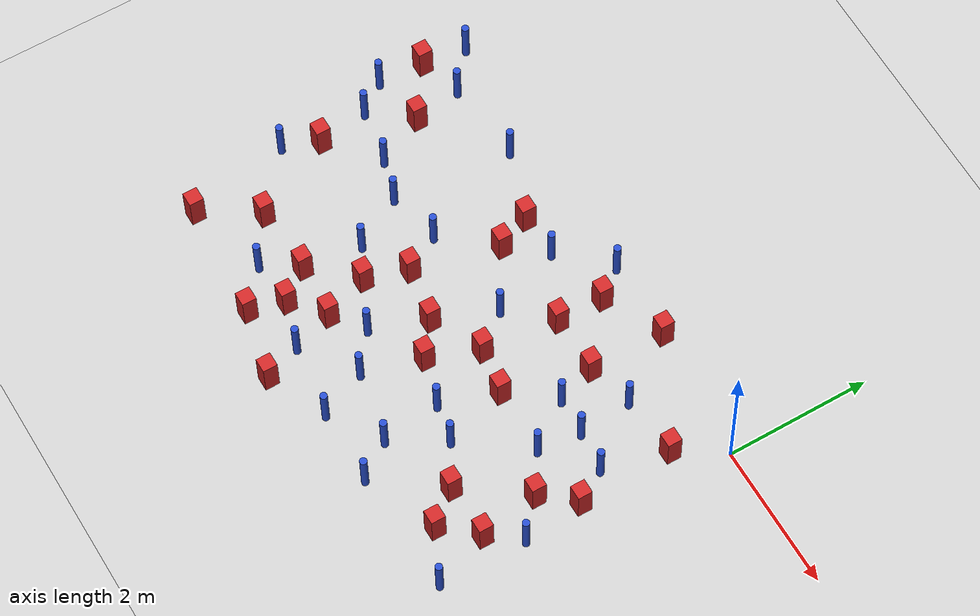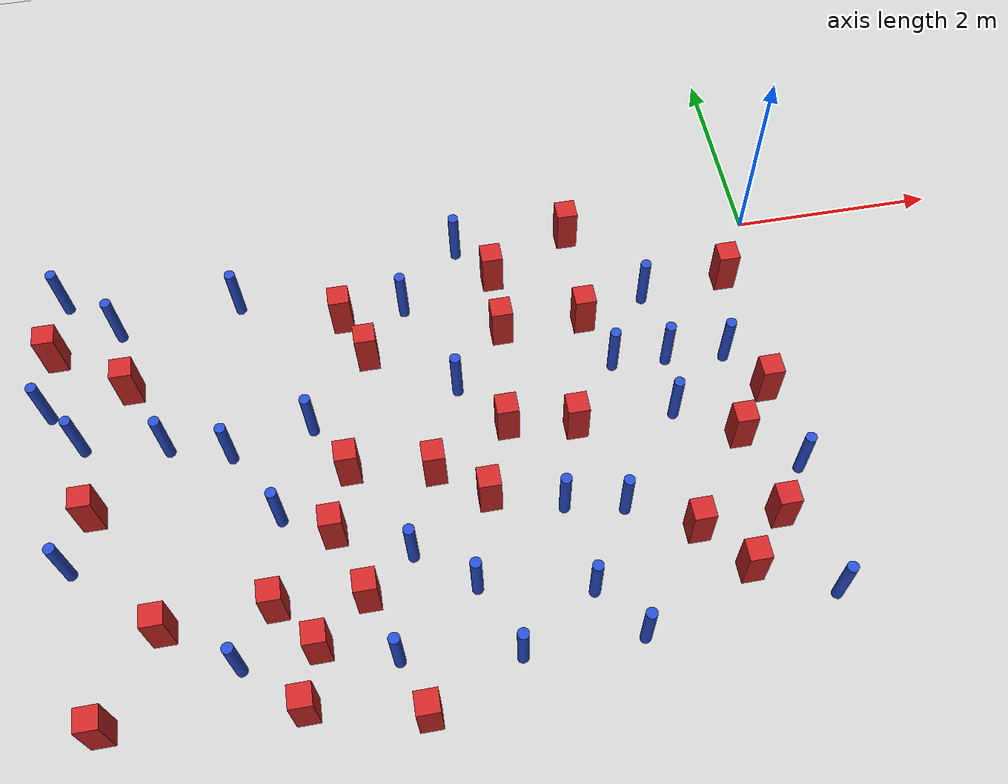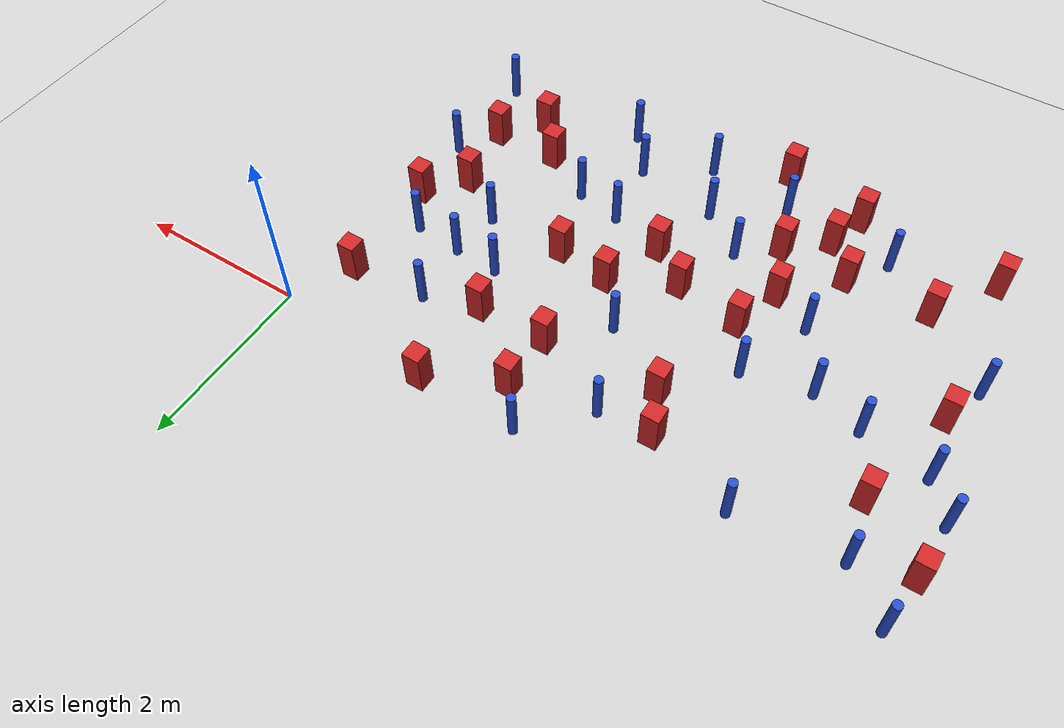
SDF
<sdf version="1.6">
 <world name="default">
  <model name="ground_plane">
   <static>1</static>
   <link name="link">
    <collision name="collision">
     <geometry><plane><normal>0 0 1</normal><size>100 100</size></plane></geometry>
     <surface><friction><ode><mu>100</mu><mu2>50</mu2></ode></friction></surface>
    </collision>
    <visual name="visual">
     <cast_shadows>0</cast_shadows>
     <geometry><plane><normal>0 0 1</normal><size>100 100</size></plane></geometry>
     <material>
      <ambient>1.0 1.0 1.0 1.0</ambient>
      <diffuse>0.8 0.8 0.8 1.0</diffuse>
      <specular>0.01 0.01 0.01 1.000000</specular>
     </material>
    </visual>
   </link>
  </model>
  <model name="NamedLocations">
   <static>true</static>
   <link name="DefaultStart"><pose>8.5 0 0 0 0 3.14</pose></link>
  </model>
  <model name="square_post_obstacle1">
   <static>true</static>
   <pose>-6.2170772033 -0.961407321698 -6.11067671241e-07 -5.50515727128e-06 -8.79689657224e-07 2.37013304536e-05</pose>
   <link name="link">
    <pose>0 0 0.25 0 -0 0</pose>
    <inertial>
     <mass>100</mass>
     <inertia>
      <ixx>0.166667</ixx>
      <ixy>0</ixy>
      <ixz>0</ixz>
      <iyy>0.166667</iyy>
      <iyz>0</iyz>
      <izz>0.166667</izz>
     </inertia>
    </inertial>
    <collision name="collision"><geometry><box><size>.2 .2 .5</size></box></geometry></collision>
    <visual name="visual">
     <geometry><box><size>.2 .2 .5</size></box></geometry>
     <material>
      <script><name>Gazebo/Red</name><uri>file://media/materials/scripts/gazebo.material</uri></script>
     </material>
    </visual>
   </link>
  </model>
  <model name="pole_obstacle1">
   <static>true</static>
   <pose>-0.284534505125 -4.02953136644 -9.47619616065e-06 5.49618799737e-07 2.36310414071e-07 -1.55090534793e-07</pose>
   <link name="link">
    <pose>0 0 0.3 0 -0 0</pose>
    <inertial>
     <mass>1</mass>
     <inertia><ixx>0.145833</ixx><ixy>0</ixy><ixz>0</ixz><iyy>0.145833</iyy><iyz>0</iyz><izz>0.125</izz></inertia>
    </inertial>
    <collision name="collision">
     <geometry><cylinder><radius>0.05</radius><length>.6</length></cylinder></geometry>
    </collision>
    <visual name="visual">
     <geometry><cylinder><radius>0.05</radius><length>.6</length></cylinder></geometry>
     <material>
      <script><name>Gazebo/Blue</name><uri>file://media/materials/scripts/gazebo.material</uri></script>
     </material>
    </visual>
   </link>
  </model>
  <model name="square_post_obstacle5">
   <static>true</static>
   <pose>-3.98409590018 -0.982114767462 -6.11067671241e-07 -5.50515727128e-06 -8.79689657224e-07 2.37013304536e-05</pose>
   <link name="link">
    <pose>0 0 0.25 0 -0 0</pose>
    <inertial>
     <mass>100</mass>
     <inertia>
      <ixx>0.166667</ixx>
      <ixy>0</ixy>
      <ixz>0</ixz>
      <iyy>0.166667</iyy>
      <iyz>0</iyz>
      <izz>0.166667</izz>
     </inertia>
    </inertial>
    <collision name="collision"><geometry><box><size>.2 .2 .5</size></box></geometry></collision>
    <visual name="visual">
     <geometry><box><size>.2 .2 .5</size></box></geometry>
     <material>
      <script><name>Gazebo/Red</name><uri>file://media/materials/scripts/gazebo.material</uri></script>
     </material>
    </visual>
   </link>
  </model>
  <model name="pole_obstacle20">
   <static>true</static>
   <pose>-1.17153905692 -1.47997683665 -9.47619616065e-06 5.49618799737e-07 2.36310414065e-07 -1.55090534798e-07</pose>
   <link name="link">
    <pose>0 0 0.3 0 -0 0</pose>
    <inertial>
     <mass>1</mass>
     <inertia><ixx>0.145833</ixx><ixy>0</ixy><ixz>0</ixz><iyy>0.145833</iyy><iyz>0</iyz><izz>0.125</izz></inertia>
    </inertial>
    <collision name="collision">
     <geometry><cylinder><radius>0.05</radius><length>.6</length></cylinder></geometry>
    </collision>
    <visual name="visual">
     <geometry><cylinder><radius>0.05</radius><length>.6</length></cylinder></geometry>
     <material>
      <script><name>Gazebo/Blue</name><uri>file://media/materials/scripts/gazebo.material</uri></script>
     </material>
    </visual>
   </link>
  </model>
  <model name="pole_obstacle22">
   <static>true</static>
   <pose>-4.56984238701 -1.65780048948 -9.47619616065e-06 5.49618799738e-07 2.36310414071e-07 -1.55090534796e-07</pose>
   <link name="link">
    <pose>0 0 0.3 0 -0 0</pose>
    <inertial>
     <mass>1</mass>
     <inertia><ixx>0.145833</ixx><ixy>0</ixy><ixz>0</ixz><iyy>0.145833</iyy><iyz>0</iyz><izz>0.125</izz></inertia>
    </inertial>
    <collision name="collision">
     <geometry><cylinder><radius>0.05</radius><length>.6</length></cylinder></geometry>
    </collision>
    <visual name="visual">
     <geometry><cylinder><radius>0.05</radius><length>.6</length></cylinder></geometry>
     <material>
      <script><name>Gazebo/Blue</name><uri>file://media/materials/scripts/gazebo.material</uri></script>
     </material>
    </visual>
   </link>
  </model>
  <model name="pole_obstacle24">
   <static>true</static>
   <pose>-5.32179568418 -1.81775550254 -9.47619616065e-06 5.49618799738e-07 2.36310414071e-07 -1.55090534796e-07</pose>
   <link name="link">
    <pose>0 0 0.3 0 -0 0</pose>
    <inertial>
     <mass>1</mass>
     <inertia><ixx>0.145833</ixx><ixy>0</ixy><ixz>0</ixz><iyy>0.145833</iyy><iyz>0</iyz><izz>0.125</izz></inertia>
    </inertial>
    <collision name="collision">
     <geometry><cylinder><radius>0.05</radius><length>.6</length></cylinder></geometry>
    </collision>
    <visual name="visual">
     <geometry><cylinder><radius>0.05</radius><length>.6</length></cylinder></geometry>
     <material>
      <script><name>Gazebo/Blue</name><uri>file://media/materials/scripts/gazebo.material</uri></script>
     </material>
    </visual>
   </link>
  </model>
  <model name="square_post_obstacle35">
   <static>true</static>
   <pose>-4.23480467688 -3.38768069975 -6.11067671241e-07 -5.50515727128e-06 -8.79689657224e-07 2.37013304536e-05</pose>
   <link name="link">
    <pose>0 0 0.25 0 -0 0</pose>
    <inertial>
     <mass>100</mass>
     <inertia>
      <ixx>0.166667</ixx>
      <ixy>0</ixy>
      <ixz>0</ixz>
      <iyy>0.166667</iyy>
      <iyz>0</iyz>
      <izz>0.166667</izz>
     </inertia>
    </inertial>
    <collision name="collision"><geometry><box><size>.2 .2 .5</size></box></geometry></collision>
    <visual name="visual">
     <geometry><box><size>.2 .2 .5</size></box></geometry>
     <material>
      <script><name>Gazebo/Red</name><uri>file://media/materials/scripts/gazebo.material</uri></script>
     </material>
    </visual>
   </link>
  </model>
  <model name="pole_obstacle34">
   <static>true</static>
   <pose>-5.16815903886 -0.163068680038 -9.47619616065e-06 5.49618799737e-07 2.36310414076e-07 -1.55090534792e-07</pose>
   <link name="link">
    <pose>0 0 0.3 0 -0 0</pose>
    <inertial>
     <mass>1</mass>
     <inertia><ixx>0.145833</ixx><ixy>0</ixy><ixz>0</ixz><iyy>0.145833</iyy><iyz>0</iyz><izz>0.125</izz></inertia>
    </inertial>
    <collision name="collision">
     <geometry><cylinder><radius>0.05</radius><length>.6</length></cylinder></geometry>
    </collision>
    <visual name="visual">
     <geometry><cylinder><radius>0.05</radius><length>.6</length></cylinder></geometry>
     <material>
      <script><name>Gazebo/Blue</name><uri>file://media/materials/scripts/gazebo.material</uri></script>
     </material>
    </visual>
   </link>
  </model>
  <model name="pole_obstacle35">
   <static>true</static>
   <pose>-1.90234170587 -2.94201416324 -9.47619616065e-06 5.49618799737e-07 2.36310414062e-07 -1.55090534798e-07</pose>
   <link name="link">
    <pose>0 0 0.3 0 -0 0</pose>
    <inertial>
     <mass>1</mass>
     <inertia><ixx>0.145833</ixx><ixy>0</ixy><ixz>0</ixz><iyy>0.145833</iyy><iyz>0</iyz><izz>0.125</izz></inertia>
    </inertial>
    <collision name="collision">
     <geometry><cylinder><radius>0.05</radius><length>.6</length></cylinder></geometry>
    </collision>
    <visual name="visual">
     <geometry><cylinder><radius>0.05</radius><length>.6</length></cylinder></geometry>
     <material>
      <script><name>Gazebo/Blue</name><uri>file://media/materials/scripts/gazebo.material</uri></script>
     </material>
    </visual>
   </link>
  </model>
  <model name="pole_obstacle37">
   <static>true</static>
   <pose>-2.9773305955 0.136437971208 -9.47619616065e-06 5.49618799737e-07 2.36310414074e-07 -1.55090534793e-07</pose>
   <link name="link">
    <pose>0 0 0.3 0 -0 0</pose>
    <inertial>
     <mass>1</mass>
     <inertia><ixx>0.145833</ixx><ixy>0</ixy><ixz>0</ixz><iyy>0.145833</iyy><iyz>0</iyz><izz>0.125</izz></inertia>
    </inertial>
    <collision name="collision">
     <geometry><cylinder><radius>0.05</radius><length>.6</length></cylinder></geometry>
    </collision>
    <visual name="visual">
     <geometry><cylinder><radius>0.05</radius><length>.6</length></cylinder></geometry>
     <material>
      <script><name>Gazebo/Blue</name><uri>file://media/materials/scripts/gazebo.material</uri></script>
     </material>
    </visual>
   </link>
  </model>
  <model name="pole_obstacle39">
   <static>true</static>
   <pose>-6.84615323671 0.140442825095 -9.47619616065e-06 5.49618799737e-07 2.36310414076e-07 -1.55090534793e-07</pose>
   <link name="link">
    <pose>0 0 0.3 0 -0 0</pose>
    <inertial>
     <mass>1</mass>
     <inertia><ixx>0.145833</ixx><ixy>0</ixy><ixz>0</ixz><iyy>0.145833</iyy><iyz>0</iyz><izz>0.125</izz></inertia>
    </inertial>
    <collision name="collision">
     <geometry><cylinder><radius>0.05</radius><length>.6</length></cylinder></geometry>
    </collision>
    <visual name="visual">
     <geometry><cylinder><radius>0.05</radius><length>.6</length></cylinder></geometry>
     <material>
      <script><name>Gazebo/Blue</name><uri>file://media/materials/scripts/gazebo.material</uri></script>
     </material>
    </visual>
   </link>
  </model>
  <model name="pole_obstacle40">
   <static>true</static>
   <pose>-3.57928712825 -0.479166919808 -9.47619616065e-06 5.49618799737e-07 2.36310414066e-07 -1.55090534798e-07</pose>
   <link name="link">
    <pose>0 0 0.3 0 -0 0</pose>
    <inertial>
     <mass>1</mass>
     <inertia><ixx>0.145833</ixx><ixy>0</ixy><ixz>0</ixz><iyy>0.145833</iyy><iyz>0</iyz><izz>0.125</izz></inertia>
    </inertial>
    <collision name="collision">
     <geometry><cylinder><radius>0.05</radius><length>.6</length></cylinder></geometry>
    </collision>
    <visual name="visual">
     <geometry><cylinder><radius>0.05</radius><length>.6</length></cylinder></geometry>
     <material>
      <script><name>Gazebo/Blue</name><uri>file://media/materials/scripts/gazebo.material</uri></script>
     </material>
    </visual>
   </link>
  </model>
  <model name="square_post_obstacle40">
   <static>true</static>
   <pose>-4.27735773775 -2.1671005403 -6.11067671241e-07 -5.50515727128e-06 -8.79689657224e-07 2.37013304536e-05</pose>
   <link name="link">
    <pose>0 0 0.25 0 -0 0</pose>
    <inertial>
     <mass>100</mass>
     <inertia>
      <ixx>0.166667</ixx>
      <ixy>0</ixy>
      <ixz>0</ixz>
      <iyy>0.166667</iyy>
      <iyz>0</iyz>
      <izz>0.166667</izz>
     </inertia>
    </inertial>
    <collision name="collision"><geometry><box><size>.2 .2 .5</size></box></geometry></collision>
    <visual name="visual">
     <geometry><box><size>.2 .2 .5</size></box></geometry>
     <material>
      <script><name>Gazebo/Red</name><uri>file://media/materials/scripts/gazebo.material</uri></script>
     </material>
    </visual>
   </link>
  </model>
  <model name="pole_obstacle45">
   <static>true</static>
   <pose>-6.96937970641 -1.10522317823 -9.47619616065e-06 5.49618799738e-07 2.36310414071e-07 -1.55090534796e-07</pose>
   <link name="link">
    <pose>0 0 0.3 0 -0 0</pose>
    <inertial>
     <mass>1</mass>
     <inertia><ixx>0.145833</ixx><ixy>0</ixy><ixz>0</ixz><iyy>0.145833</iyy><iyz>0</iyz><izz>0.125</izz></inertia>
    </inertial>
    <collision name="collision">
     <geometry><cylinder><radius>0.05</radius><length>.6</length></cylinder></geometry>
    </collision>
    <visual name="visual">
     <geometry><cylinder><radius>0.05</radius><length>.6</length></cylinder></geometry>
     <material>
      <script><name>Gazebo/Blue</name><uri>file://media/materials/scripts/gazebo.material</uri></script>
     </material>
    </visual>
   </link>
  </model>
  <model name="square_post_obstacle42">
   <static>true</static>
   <pose>-0.33742407636 -1.98371669091 -6.11067671241e-07 -5.50515727128e-06 -8.79689657224e-07 2.37013304536e-05</pose>
   <link name="link">
    <pose>0 0 0.25 0 -0 0</pose>
    <inertial>
     <mass>100</mass>
     <inertia>
      <ixx>0.166667</ixx>
      <ixy>0</ixy>
      <ixz>0</ixz>
      <iyy>0.166667</iyy>
      <iyz>0</iyz>
      <izz>0.166667</izz>
     </inertia>
    </inertial>
    <collision name="collision"><geometry><box><size>.2 .2 .5</size></box></geometry></collision>
    <visual name="visual">
     <geometry><box><size>.2 .2 .5</size></box></geometry>
     <material>
      <script><name>Gazebo/Red</name><uri>file://media/materials/scripts/gazebo.material</uri></script>
     </material>
    </visual>
   </link>
  </model>
  <model name="pole_obstacle47">
   <static>true</static>
   <pose>-4.92158168173 -2.52005826206 -9.47619616065e-06 5.49618799738e-07 2.36310414051e-07 -1.55090534805e-07</pose>
   <link name="link">
    <pose>0 0 0.3 0 -0 0</pose>
    <inertial>
     <mass>1</mass>
     <inertia><ixx>0.145833</ixx><ixy>0</ixy><ixz>0</ixz><iyy>0.145833</iyy><iyz>0</iyz><izz>0.125</izz></inertia>
    </inertial>
    <collision name="collision">
     <geometry><cylinder><radius>0.05</radius><length>.6</length></cylinder></geometry>
    </collision>
    <visual name="visual">
     <geometry><cylinder><radius>0.05</radius><length>.6</length></cylinder></geometry>
     <material>
      <script><name>Gazebo/Blue</name><uri>file://media/materials/scripts/gazebo.material</uri></script>
     </material>
    </visual>
   </link>
  </model>
  <model name="pole_obstacle49">
   <static>true</static>
   <pose>-4.04220562273 -3.95955701616 -9.47619616065e-06 5.49618799737e-07 2.36310414058e-07 -1.550905348e-07</pose>
   <link name="link">
    <pose>0 0 0.3 0 -0 0</pose>
    <inertial>
     <mass>1</mass>
     <inertia><ixx>0.145833</ixx><ixy>0</ixy><ixz>0</ixz><iyy>0.145833</iyy><iyz>0</iyz><izz>0.125</izz></inertia>
    </inertial>
    <collision name="collision">
     <geometry><cylinder><radius>0.05</radius><length>.6</length></cylinder></geometry>
    </collision>
    <visual name="visual">
     <geometry><cylinder><radius>0.05</radius><length>.6</length></cylinder></geometry>
     <material>
      <script><name>Gazebo/Blue</name><uri>file://media/materials/scripts/gazebo.material</uri></script>
     </material>
    </visual>
   </link>
  </model>
  <model name="square_post_obstacle61">
   <static>true</static>
   <pose>-4.68014609991 -3.75470577585 -6.11067671241e-07 -5.50515727128e-06 -8.79689657224e-07 2.37013304536e-05</pose>
   <link name="link">
    <pose>0 0 0.25 0 -0 0</pose>
    <inertial>
     <mass>100</mass>
     <inertia>
      <ixx>0.166667</ixx>
      <ixy>0</ixy>
      <ixz>0</ixz>
      <iyy>0.166667</iyy>
      <iyz>0</iyz>
      <izz>0.166667</izz>
     </inertia>
    </inertial>
    <collision name="collision"><geometry><box><size>.2 .2 .5</size></box></geometry></collision>
    <visual name="visual">
     <geometry><box><size>.2 .2 .5</size></box></geometry>
     <material>
      <script><name>Gazebo/Red</name><uri>file://media/materials/scripts/gazebo.material</uri></script>
     </material>
    </visual>
   </link>
  </model>
  <model name="pole_obstacle60">
   <static>true</static>
   <pose>-3.31023344506 -3.44781018627 -9.47619616065e-06 5.49618799737e-07 2.36310414051e-07 -1.55090534807e-07</pose>
   <link name="link">
    <pose>0 0 0.3 0 -0 0</pose>
    <inertial>
     <mass>1</mass>
     <inertia><ixx>0.145833</ixx><ixy>0</ixy><ixz>0</ixz><iyy>0.145833</iyy><iyz>0</iyz><izz>0.125</izz></inertia>
    </inertial>
    <collision name="collision">
     <geometry><cylinder><radius>0.05</radius><length>.6</length></cylinder></geometry>
    </collision>
    <visual name="visual">
     <geometry><cylinder><radius>0.05</radius><length>.6</length></cylinder></geometry>
     <material>
      <script><name>Gazebo/Blue</name><uri>file://media/materials/scripts/gazebo.material</uri></script>
     </material>
    </visual>
   </link>
  </model>
  <model name="pole_obstacle62">
   <static>true</static>
   <pose>-0.251763708988 -2.82198197746 -9.47619616065e-06 5.49618799738e-07 2.36310414071e-07 -1.55090534795e-07</pose>
   <link name="link">
    <pose>0 0 0.3 0 -0 0</pose>
    <inertial>
     <mass>1</mass>
     <inertia><ixx>0.145833</ixx><ixy>0</ixy><ixz>0</ixz><iyy>0.145833</iyy><iyz>0</iyz><izz>0.125</izz></inertia>
    </inertial>
    <collision name="collision">
     <geometry><cylinder><radius>0.05</radius><length>.6</length></cylinder></geometry>
    </collision>
    <visual name="visual">
     <geometry><cylinder><radius>0.05</radius><length>.6</length></cylinder></geometry>
     <material>
      <script><name>Gazebo/Blue</name><uri>file://media/materials/scripts/gazebo.material</uri></script>
     </material>
    </visual>
   </link>
  </model>
  <model name="square_post_obstacle65">
   <static>true</static>
   <pose>-6.45411995182 -4.13183697915 -6.11067671241e-07 -5.50515727128e-06 -8.79689657224e-07 2.37013304536e-05</pose>
   <link name="link">
    <pose>0 0 0.25 0 -0 0</pose>
    <inertial>
     <mass>100</mass>
     <inertia>
      <ixx>0.166667</ixx>
      <ixy>0</ixy>
      <ixz>0</ixz>
      <iyy>0.166667</iyy>
      <iyz>0</iyz>
      <izz>0.166667</izz>
     </inertia>
    </inertial>
    <collision name="collision"><geometry><box><size>.2 .2 .5</size></box></geometry></collision>
    <visual name="visual">
     <geometry><box><size>.2 .2 .5</size></box></geometry>
     <material>
      <script><name>Gazebo/Red</name><uri>file://media/materials/scripts/gazebo.material</uri></script>
     </material>
    </visual>
   </link>
  </model>
  <model name="pole_obstacle64">
   <static>true</static>
   <pose>-5.33782503593 -3.80584611164 -9.47619616065e-06 5.49618799738e-07 2.36310414051e-07 -1.55090534805e-07</pose>
   <link name="link">
    <pose>0 0 0.3 0 -0 0</pose>
    <inertial>
     <mass>1</mass>
     <inertia><ixx>0.145833</ixx><ixy>0</ixy><ixz>0</ixz><iyy>0.145833</iyy><iyz>0</iyz><izz>0.125</izz></inertia>
    </inertial>
    <collision name="collision">
     <geometry><cylinder><radius>0.05</radius><length>.6</length></cylinder></geometry>
    </collision>
    <visual name="visual">
     <geometry><cylinder><radius>0.05</radius><length>.6</length></cylinder></geometry>
     <material>
      <script><name>Gazebo/Blue</name><uri>file://media/materials/scripts/gazebo.material</uri></script>
     </material>
    </visual>
   </link>
  </model>
  <model name="pole_obstacle65">
   <static>true</static>
   <pose>-5.88881091894 -1.64636551626 -9.47619616065e-06 5.49618799738e-07 2.36310414071e-07 -1.55090534796e-07</pose>
   <link name="link">
    <pose>0 0 0.3 0 -0 0</pose>
    <inertial>
     <mass>1</mass>
     <inertia><ixx>0.145833</ixx><ixy>0</ixy><ixz>0</ixz><iyy>0.145833</iyy><iyz>0</iyz><izz>0.125</izz></inertia>
    </inertial>
    <collision name="collision">
     <geometry><cylinder><radius>0.05</radius><length>.6</length></cylinder></geometry>
    </collision>
    <visual name="visual">
     <geometry><cylinder><radius>0.05</radius><length>.6</length></cylinder></geometry>
     <material>
      <script><name>Gazebo/Blue</name><uri>file://media/materials/scripts/gazebo.material</uri></script>
     </material>
    </visual>
   </link>
  </model>
  <model name="square_post_obstacle68">
   <static>true</static>
   <pose>-5.95515383015 -3.38120031192 -6.11067671241e-07 -5.50515727128e-06 -8.79689657224e-07 2.37013304536e-05</pose>
   <link name="link">
    <pose>0 0 0.25 0 -0 0</pose>
    <inertial>
     <mass>100</mass>
     <inertia>
      <ixx>0.166667</ixx>
      <ixy>0</ixy>
      <ixz>0</ixz>
      <iyy>0.166667</iyy>
      <iyz>0</iyz>
      <izz>0.166667</izz>
     </inertia>
    </inertial>
    <collision name="collision"><geometry><box><size>.2 .2 .5</size></box></geometry></collision>
    <visual name="visual">
     <geometry><box><size>.2 .2 .5</size></box></geometry>
     <material>
      <script><name>Gazebo/Red</name><uri>file://media/materials/scripts/gazebo.material</uri></script>
     </material>
    </visual>
   </link>
  </model>
  <model name="square_post_obstacle76">
   <static>true</static>
   <pose>-0.966701581547 -3.70068667957 -6.11067671241e-07 -5.50515727128e-06 -8.79689657224e-07 2.37013304536e-05</pose>
   <link name="link">
    <pose>0 0 0.25 0 -0 0</pose>
    <inertial>
     <mass>100</mass>
     <inertia>
      <ixx>0.166667</ixx>
      <ixy>0</ixy>
      <ixz>0</ixz>
      <iyy>0.166667</iyy>
      <iyz>0</iyz>
      <izz>0.166667</izz>
     </inertia>
    </inertial>
    <collision name="collision"><geometry><box><size>.2 .2 .5</size></box></geometry></collision>
    <visual name="visual">
     <geometry><box><size>.2 .2 .5</size></box></geometry>
     <material>
      <script><name>Gazebo/Red</name><uri>file://media/materials/scripts/gazebo.material</uri></script>
     </material>
    </visual>
   </link>
  </model>
  <model name="square_post_obstacle77">
   <static>true</static>
   <pose>-1.87093287163 -0.91754470001 -6.11067671241e-07 -5.50515727128e-06 -8.79689657224e-07 2.37013304536e-05</pose>
   <link name="link">
    <pose>0 0 0.25 0 -0 0</pose>
    <inertial>
     <mass>100</mass>
     <inertia>
      <ixx>0.166667</ixx>
      <ixy>0</ixy>
      <ixz>0</ixz>
      <iyy>0.166667</iyy>
      <iyz>0</iyz>
      <izz>0.166667</izz>
     </inertia>
    </inertial>
    <collision name="collision"><geometry><box><size>.2 .2 .5</size></box></geometry></collision>
    <visual name="visual">
     <geometry><box><size>.2 .2 .5</size></box></geometry>
     <material>
      <script><name>Gazebo/Red</name><uri>file://media/materials/scripts/gazebo.material</uri></script>
     </material>
    </visual>
   </link>
  </model>
  <model name="pole_obstacle93">
   <static>true</static>
   <pose>-6.32820789131 -0.287527480911 -9.47619616065e-06 5.49618799737e-07 2.36310414075e-07 -1.55090534794e-07</pose>
   <link name="link">
    <pose>0 0 0.3 0 -0 0</pose>
    <inertial>
     <mass>1</mass>
     <inertia><ixx>0.145833</ixx><ixy>0</ixy><ixz>0</ixz><iyy>0.145833</iyy><iyz>0</iyz><izz>0.125</izz></inertia>
    </inertial>
    <collision name="collision">
     <geometry><cylinder><radius>0.05</radius><length>.6</length></cylinder></geometry>
    </collision>
    <visual name="visual">
     <geometry><cylinder><radius>0.05</radius><length>.6</length></cylinder></geometry>
     <material>
      <script><name>Gazebo/Blue</name><uri>file://media/materials/scripts/gazebo.material</uri></script>
     </material>
    </visual>
   </link>
  </model>
  <model name="square_post_obstacle85">
   <static>true</static>
   <pose>-3.07377526714 -2.64544645421 -6.11067671241e-07 -5.50515727128e-06 -8.79689657224e-07 2.37013304536e-05</pose>
   <link name="link">
    <pose>0 0 0.25 0 -0 0</pose>
    <inertial>
     <mass>100</mass>
     <inertia>
      <ixx>0.166667</ixx>
      <ixy>0</ixy>
      <ixz>0</ixz>
      <iyy>0.166667</iyy>
      <iyz>0</iyz>
      <izz>0.166667</izz>
     </inertia>
    </inertial>
    <collision name="collision"><geometry><box><size>.2 .2 .5</size></box></geometry></collision>
    <visual name="visual">
     <geometry><box><size>.2 .2 .5</size></box></geometry>
     <material>
      <script><name>Gazebo/Red</name><uri>file://media/materials/scripts/gazebo.material</uri></script>
     </material>
    </visual>
   </link>
  </model>
  <model name="square_post_obstacle98">
   <static>true</static>
   <pose>-3.85522120968 -4.46861364097 -6.11067671241e-07 -5.50515727128e-06 -8.79689657224e-07 2.37013304536e-05</pose>
   <link name="link">
    <pose>0 0 0.25 0 -0 0</pose>
    <inertial>
     <mass>100</mass>
     <inertia>
      <ixx>0.166667</ixx>
      <ixy>0</ixy>
      <ixz>0</ixz>
      <iyy>0.166667</iyy>
      <iyz>0</iyz>
      <izz>0.166667</izz>
     </inertia>
    </inertial>
    <collision name="collision"><geometry><box><size>.2 .2 .5</size></box></geometry></collision>
    <visual name="visual">
     <geometry><box><size>.2 .2 .5</size></box></geometry>
     <material>
      <script><name>Gazebo/Red</name><uri>file://media/materials/scripts/gazebo.material</uri></script>
     </material>
    </visual>
   </link>
  </model>
  <model name="square_post_obstacle100">
   <static>true</static>
   <pose>-2.67769635707 -0.914953310221 -6.11067671241e-07 -5.50515727128e-06 -8.79689657224e-07 2.37013304536e-05</pose>
   <link name="link">
    <pose>0 0 0.25 0 -0 0</pose>
    <inertial>
     <mass>100</mass>
     <inertia>
      <ixx>0.166667</ixx>
      <ixy>0</ixy>
      <ixz>0</ixz>
      <iyy>0.166667</iyy>
      <iyz>0</iyz>
      <izz>0.166667</izz>
     </inertia>
    </inertial>
    <collision name="collision"><geometry><box><size>.2 .2 .5</size></box></geometry></collision>
    <visual name="visual">
     <geometry><box><size>.2 .2 .5</size></box></geometry>
     <material>
      <script><name>Gazebo/Red</name><uri>file://media/materials/scripts/gazebo.material</uri></script>
     </material>
    </visual>
   </link>
  </model>
  <model name="pole_obstacle119">
   <static>true</static>
   <pose>-3.19075478056 -1.46977491416 -9.47619616065e-06 5.49618799737e-07 2.36310414072e-07 -1.55090534793e-07</pose>
   <link name="link">
    <pose>0 0 0.3 0 -0 0</pose>
    <inertial>
     <mass>1</mass>
     <inertia><ixx>0.145833</ixx><ixy>0</ixy><ixz>0</ixz><iyy>0.145833</iyy><iyz>0</iyz><izz>0.125</izz></inertia>
    </inertial>
    <collision name="collision">
     <geometry><cylinder><radius>0.05</radius><length>.6</length></cylinder></geometry>
    </collision>
    <visual name="visual">
     <geometry><cylinder><radius>0.05</radius><length>.6</length></cylinder></geometry>
     <material>
      <script><name>Gazebo/Blue</name><uri>file://media/materials/scripts/gazebo.material</uri></script>
     </material>
    </visual>
   </link>
  </model>
  <model name="square_post_obstacle112">
   <static>true</static>
   <pose>-0.38573494305 -0.6562085797 -6.11067671241e-07 -5.50515727128e-06 -8.79689657224e-07 2.37013304536e-05</pose>
   <link name="link">
    <pose>0 0 0.25 0 -0 0</pose>
    <inertial>
     <mass>100</mass>
     <inertia>
      <ixx>0.166667</ixx>
      <ixy>0</ixy>
      <ixz>0</ixz>
      <iyy>0.166667</iyy>
      <iyz>0</iyz>
      <izz>0.166667</izz>
     </inertia>
    </inertial>
    <collision name="collision"><geometry><box><size>.2 .2 .5</size></box></geometry></collision>
    <visual name="visual">
     <geometry><box><size>.2 .2 .5</size></box></geometry>
     <material>
      <script><name>Gazebo/Red</name><uri>file://media/materials/scripts/gazebo.material</uri></script>
     </material>
    </visual>
   </link>
  </model>
  <model name="pole_obstacle127">
   <static>true</static>
   <pose>-1.24162075279 -2.07143732188 -9.47619616065e-06 5.49618799737e-07 2.36310414062e-07 -1.55090534798e-07</pose>
   <link name="link">
    <pose>0 0 0.3 0 -0 0</pose>
    <inertial>
     <mass>1</mass>
     <inertia><ixx>0.145833</ixx><ixy>0</ixy><ixz>0</ixz><iyy>0.145833</iyy><iyz>0</iyz><izz>0.125</izz></inertia>
    </inertial>
    <collision name="collision">
     <geometry><cylinder><radius>0.05</radius><length>.6</length></cylinder></geometry>
    </collision>
    <visual name="visual">
     <geometry><cylinder><radius>0.05</radius><length>.6</length></cylinder></geometry>
     <material>
      <script><name>Gazebo/Blue</name><uri>file://media/materials/scripts/gazebo.material</uri></script>
     </material>
    </visual>
   </link>
  </model>
  <model name="pole_obstacle133">
   <static>true</static>
   <pose>-6.74891001096 -2.70549046169 -9.47619616065e-06 5.49618799738e-07 2.36310414051e-07 -1.55090534805e-07</pose>
   <link name="link">
    <pose>0 0 0.3 0 -0 0</pose>
    <inertial>
     <mass>1</mass>
     <inertia><ixx>0.145833</ixx><ixy>0</ixy><ixz>0</ixz><iyy>0.145833</iyy><iyz>0</iyz><izz>0.125</izz></inertia>
    </inertial>
    <collision name="collision">
     <geometry><cylinder><radius>0.05</radius><length>.6</length></cylinder></geometry>
    </collision>
    <visual name="visual">
     <geometry><cylinder><radius>0.05</radius><length>.6</length></cylinder></geometry>
     <material>
      <script><name>Gazebo/Blue</name><uri>file://media/materials/scripts/gazebo.material</uri></script>
     </material>
    </visual>
   </link>
  </model>
  <model name="pole_obstacle138">
   <static>true</static>
   <pose>-3.03140095677 -4.10272542102 -9.4761961606e-06 5.49618799729e-07 2.36310414006e-07 -1.55090534822e-07</pose>
   <link name="link">
    <pose>0 0 0.3 0 -0 0</pose>
    <inertial>
     <mass>1</mass>
     <inertia><ixx>0.145833</ixx><ixy>0</ixy><ixz>0</ixz><iyy>0.145833</iyy><iyz>0</iyz><izz>0.125</izz></inertia>
    </inertial>
    <collision name="collision">
     <geometry><cylinder><radius>0.05</radius><length>.6</length></cylinder></geometry>
    </collision>
    <visual name="visual">
     <geometry><cylinder><radius>0.05</radius><length>.6</length></cylinder></geometry>
     <material>
      <script><name>Gazebo/Blue</name><uri>file://media/materials/scripts/gazebo.material</uri></script>
     </material>
    </visual>
   </link>
  </model>
  <model name="square_post_obstacle122">
   <static>true</static>
   <pose>-0.70790449161 -2.41819203612 -6.11067671241e-07 -5.50515727128e-06 -8.79689657224e-07 2.37013304536e-05</pose>
   <link name="link">
    <pose>0 0 0.25 0 -0 0</pose>
    <inertial>
     <mass>100</mass>
     <inertia>
      <ixx>0.166667</ixx>
      <ixy>0</ixy>
      <ixz>0</ixz>
      <iyy>0.166667</iyy>
      <iyz>0</iyz>
      <izz>0.166667</izz>
     </inertia>
    </inertial>
    <collision name="collision"><geometry><box><size>.2 .2 .5</size></box></geometry></collision>
    <visual name="visual">
     <geometry><box><size>.2 .2 .5</size></box></geometry>
     <material>
      <script><name>Gazebo/Red</name><uri>file://media/materials/scripts/gazebo.material</uri></script>
     </material>
    </visual>
   </link>
  </model>
  <model name="square_post_obstacle131">
   <static>true</static>
   <pose>-2.66716769289 -0.26536862709 -6.11067671241e-07 -5.50515727128e-06 -8.79689657224e-07 2.37013304536e-05</pose>
   <link name="link">
    <pose>0 0 0.25 0 -0 0</pose>
    <inertial>
     <mass>100</mass>
     <inertia>
      <ixx>0.166667</ixx>
      <ixy>0</ixy>
      <ixz>0</ixz>
      <iyy>0.166667</iyy>
      <iyz>0</iyz>
      <izz>0.166667</izz>
     </inertia>
    </inertial>
    <collision name="collision"><geometry><box><size>.2 .2 .5</size></box></geometry></collision>
    <visual name="visual">
     <geometry><box><size>.2 .2 .5</size></box></geometry>
     <material>
      <script><name>Gazebo/Red</name><uri>file://media/materials/scripts/gazebo.material</uri></script>
     </material>
    </visual>
   </link>
  </model>
  <model name="pole_obstacle145">
   <static>true</static>
   <pose>-1.99149459129 -4.12002032639 -9.47619616065e-06 5.49618799737e-07 2.36310414064e-07 -1.55090534797e-07</pose>
   <link name="link">
    <pose>0 0 0.3 0 -0 0</pose>
    <inertial>
     <mass>1</mass>
     <inertia><ixx>0.145833</ixx><ixy>0</ixy><ixz>0</ixz><iyy>0.145833</iyy><iyz>0</iyz><izz>0.125</izz></inertia>
    </inertial>
    <collision name="collision">
     <geometry><cylinder><radius>0.05</radius><length>.6</length></cylinder></geometry>
    </collision>
    <visual name="visual">
     <geometry><cylinder><radius>0.05</radius><length>.6</length></cylinder></geometry>
     <material>
      <script><name>Gazebo/Blue</name><uri>file://media/materials/scripts/gazebo.material</uri></script>
     </material>
    </visual>
   </link>
  </model>
  <model name="pole_obstacle152">
   <static>true</static>
   <pose>-2.43079862088 -2.83289887346 -9.47619616065e-06 5.49618799737e-07 2.36310414051e-07 -1.55090534807e-07</pose>
   <link name="link">
    <pose>0 0 0.3 0 -0 0</pose>
    <inertial>
     <mass>1</mass>
     <inertia><ixx>0.145833</ixx><ixy>0</ixy><ixz>0</ixz><iyy>0.145833</iyy><iyz>0</iyz><izz>0.125</izz></inertia>
    </inertial>
    <collision name="collision">
     <geometry><cylinder><radius>0.05</radius><length>.6</length></cylinder></geometry>
    </collision>
    <visual name="visual">
     <geometry><cylinder><radius>0.05</radius><length>.6</length></cylinder></geometry>
     <material>
      <script><name>Gazebo/Blue</name><uri>file://media/materials/scripts/gazebo.material</uri></script>
     </material>
    </visual>
   </link>
  </model>
  <model name="square_post_obstacle145">
   <static>true</static>
   <pose>-2.17203989652 -2.06261206084 -6.11067671241e-07 -5.50515727128e-06 -8.79689657224e-07 2.37013304536e-05</pose>
   <link name="link">
    <pose>0 0 0.25 0 -0 0</pose>
    <inertial>
     <mass>100</mass>
     <inertia>
      <ixx>0.166667</ixx>
      <ixy>0</ixy>
      <ixz>0</ixz>
      <iyy>0.166667</iyy>
      <iyz>0</iyz>
      <izz>0.166667</izz>
     </inertia>
    </inertial>
    <collision name="collision"><geometry><box><size>.2 .2 .5</size></box></geometry></collision>
    <visual name="visual">
     <geometry><box><size>.2 .2 .5</size></box></geometry>
     <material>
      <script><name>Gazebo/Red</name><uri>file://media/materials/scripts/gazebo.material</uri></script>
     </material>
    </visual>
   </link>
  </model>
  <model name="square_post_obstacle153">
   <static>true</static>
   <pose>-1.84217505199 0.135511650137 -6.11067671241e-07 -5.50515727128e-06 -8.79689657224e-07 2.37013304536e-05</pose>
   <link name="link">
    <pose>0 0 0.25 0 -0 0</pose>
    <inertial>
     <mass>100</mass>
     <inertia>
      <ixx>0.166667</ixx>
      <ixy>0</ixy>
      <ixz>0</ixz>
      <iyy>0.166667</iyy>
      <iyz>0</iyz>
      <izz>0.166667</izz>
     </inertia>
    </inertial>
    <collision name="collision"><geometry><box><size>.2 .2 .5</size></box></geometry></collision>
    <visual name="visual">
     <geometry><box><size>.2 .2 .5</size></box></geometry>
     <material>
      <script><name>Gazebo/Red</name><uri>file://media/materials/scripts/gazebo.material</uri></script>
     </material>
    </visual>
   </link>
  </model>
  <model name="pole_obstacle170">
   <static>true</static>
   <pose>-1.68998333844 -1.45346107243 -9.47619616065e-06 5.49618799737e-07 2.36310414065e-07 -1.55090534798e-07</pose>
   <link name="link">
    <pose>0 0 0.3 0 -0 0</pose>
    <inertial>
     <mass>1</mass>
     <inertia><ixx>0.145833</ixx><ixy>0</ixy><ixz>0</ixz><iyy>0.145833</iyy><iyz>0</iyz><izz>0.125</izz></inertia>
    </inertial>
    <collision name="collision">
     <geometry><cylinder><radius>0.05</radius><length>.6</length></cylinder></geometry>
    </collision>
    <visual name="visual">
     <geometry><cylinder><radius>0.05</radius><length>.6</length></cylinder></geometry>
     <material>
      <script><name>Gazebo/Blue</name><uri>file://media/materials/scripts/gazebo.material</uri></script>
     </material>
    </visual>
   </link>
  </model>
  <model name="square_post_obstacle162">
   <static>true</static>
   <pose>-0.567545507724 -3.25318499984 -6.11067671241e-07 -5.50515727128e-06 -8.79689657224e-07 2.37013304536e-05</pose>
   <link name="link">
    <pose>0 0 0.25 0 -0 0</pose>
    <inertial>
     <mass>100</mass>
     <inertia>
      <ixx>0.166667</ixx>
      <ixy>0</ixy>
      <ixz>0</ixz>
      <iyy>0.166667</iyy>
      <iyz>0</iyz>
      <izz>0.166667</izz>
     </inertia>
    </inertial>
    <collision name="collision"><geometry><box><size>.2 .2 .5</size></box></geometry></collision>
    <visual name="visual">
     <geometry><box><size>.2 .2 .5</size></box></geometry>
     <material>
      <script><name>Gazebo/Red</name><uri>file://media/materials/scripts/gazebo.material</uri></script>
     </material>
    </visual>
   </link>
  </model>
  <model name="pole_obstacle172">
   <static>true</static>
   <pose>-1.23403818169 -0.740711729489 -9.47619616065e-06 5.49618799737e-07 2.36310414065e-07 -1.55090534798e-07</pose>
   <link name="link">
    <pose>0 0 0.3 0 -0 0</pose>
    <inertial>
     <mass>1</mass>
     <inertia><ixx>0.145833</ixx><ixy>0</ixy><ixz>0</ixz><iyy>0.145833</iyy><iyz>0</iyz><izz>0.125</izz></inertia>
    </inertial>
    <collision name="collision">
     <geometry><cylinder><radius>0.05</radius><length>.6</length></cylinder></geometry>
    </collision>
    <visual name="visual">
     <geometry><cylinder><radius>0.05</radius><length>.6</length></cylinder></geometry>
     <material>
      <script><name>Gazebo/Blue</name><uri>file://media/materials/scripts/gazebo.material</uri></script>
     </material>
    </visual>
   </link>
  </model>
  <model name="square_post_obstacle165">
   <static>true</static>
   <pose>-5.01214204924 -3.33685689523 -6.11067671241e-07 -5.50515727128e-06 -8.79689657224e-07 2.37013304536e-05</pose>
   <link name="link">
    <pose>0 0 0.25 0 -0 0</pose>
    <inertial>
     <mass>100</mass>
     <inertia>
      <ixx>0.166667</ixx>
      <ixy>0</ixy>
      <ixz>0</ixz>
      <iyy>0.166667</iyy>
      <iyz>0</iyz>
      <izz>0.166667</izz>
     </inertia>
    </inertial>
    <collision name="collision"><geometry><box><size>.2 .2 .5</size></box></geometry></collision>
    <visual name="visual">
     <geometry><box><size>.2 .2 .5</size></box></geometry>
     <material>
      <script><name>Gazebo/Red</name><uri>file://media/materials/scripts/gazebo.material</uri></script>
     </material>
    </visual>
   </link>
  </model>
  <model name="square_post_obstacle167">
   <static>true</static>
   <pose>-6.92540071514 -0.472148033115 -6.11067671241e-07 -5.50515727128e-06 -8.79689657224e-07 2.37013304536e-05</pose>
   <link name="link">
    <pose>0 0 0.25 0 -0 0</pose>
    <inertial>
     <mass>100</mass>
     <inertia>
      <ixx>0.166667</ixx>
      <ixy>0</ixy>
      <ixz>0</ixz>
      <iyy>0.166667</iyy>
      <iyz>0</iyz>
      <izz>0.166667</izz>
     </inertia>
    </inertial>
    <collision name="collision"><geometry><box><size>.2 .2 .5</size></box></geometry></collision>
    <visual name="visual">
     <geometry><box><size>.2 .2 .5</size></box></geometry>
     <material>
      <script><name>Gazebo/Red</name><uri>file://media/materials/scripts/gazebo.material</uri></script>
     </material>
    </visual>
   </link>
  </model>
  <model name="square_post_obstacle184">
   <static>true</static>
   <pose>-3.51882108883 -2.30757919754 -6.11067671241e-07 -5.50515727128e-06 -8.79689657224e-07 2.37013304536e-05</pose>
   <link name="link">
    <pose>0 0 0.25 0 -0 0</pose>
    <inertial>
     <mass>100</mass>
     <inertia>
      <ixx>0.166667</ixx>
      <ixy>0</ixy>
      <ixz>0</ixz>
      <iyy>0.166667</iyy>
      <iyz>0</iyz>
      <izz>0.166667</izz>
     </inertia>
    </inertial>
    <collision name="collision"><geometry><box><size>.2 .2 .5</size></box></geometry></collision>
    <visual name="visual">
     <geometry><box><size>.2 .2 .5</size></box></geometry>
     <material>
      <script><name>Gazebo/Red</name><uri>file://media/materials/scripts/gazebo.material</uri></script>
     </material>
    </visual>
   </link>
  </model>
  <model name="square_post_obstacle189">
   <static>true</static>
   <pose>-4.18217599243 -0.509070029953 -6.11067671241e-07 -5.50515727128e-06 -8.79689657224e-07 2.37013304536e-05</pose>
   <link name="link">
    <pose>0 0 0.25 0 -0 0</pose>
    <inertial>
     <mass>100</mass>
     <inertia>
      <ixx>0.166667</ixx>
      <ixy>0</ixy>
      <ixz>0</ixz>
      <iyy>0.166667</iyy>
      <iyz>0</iyz>
      <izz>0.166667</izz>
     </inertia>
    </inertial>
    <collision name="collision"><geometry><box><size>.2 .2 .5</size></box></geometry></collision>
    <visual name="visual">
     <geometry><box><size>.2 .2 .5</size></box></geometry>
     <material>
      <script><name>Gazebo/Red</name><uri>file://media/materials/scripts/gazebo.material</uri></script>
     </material>
    </visual>
   </link>
  </model>
  <model name="square_post_obstacle196">
   <static>true</static>
   <pose>-6.55332104682 -2.21405794304 -6.11067671241e-07 -5.50515727128e-06 -8.79689657224e-07 2.37013304536e-05</pose>
   <link name="link">
    <pose>0 0 0.25 0 -0 0</pose>
    <inertial>
     <mass>100</mass>
     <inertia>
      <ixx>0.166667</ixx>
      <ixy>0</ixy>
      <ixz>0</ixz>
      <iyy>0.166667</iyy>
      <iyz>0</iyz>
      <izz>0.166667</izz>
     </inertia>
    </inertial>
    <collision name="collision"><geometry><box><size>.2 .2 .5</size></box></geometry></collision>
    <visual name="visual">
     <geometry><box><size>.2 .2 .5</size></box></geometry>
     <material>
      <script><name>Gazebo/Red</name><uri>file://media/materials/scripts/gazebo.material</uri></script>
     </material>
    </visual>
   </link>
  </model>
  <model name="pole_obstacle200">
   <static>true</static>
   <pose>-6.65889174888 -1.50535927099 -9.47619616065e-06 5.49618799738e-07 2.36310414071e-07 -1.55090534796e-07</pose>
   <link name="link">
    <pose>0 0 0.3 0 -0 0</pose>
    <inertial>
     <mass>1</mass>
     <inertia><ixx>0.145833</ixx><ixy>0</ixy><ixz>0</ixz><iyy>0.145833</iyy><iyz>0</iyz><izz>0.125</izz></inertia>
    </inertial>
    <collision name="collision">
     <geometry><cylinder><radius>0.05</radius><length>.6</length></cylinder></geometry>
    </collision>
    <visual name="visual">
     <geometry><cylinder><radius>0.05</radius><length>.6</length></cylinder></geometry>
     <material>
      <script><name>Gazebo/Blue</name><uri>file://media/materials/scripts/gazebo.material</uri></script>
     </material>
    </visual>
   </link>
  </model>
  <model name="pole_obstacle204">
   <static>true</static>
   <pose>-2.32730060483 -3.65000286064 -9.47619616065e-06 5.49618799737e-07 2.36310414051e-07 -1.55090534807e-07</pose>
   <link name="link">
    <pose>0 0 0.3 0 -0 0</pose>
    <inertial>
     <mass>1</mass>
     <inertia><ixx>0.145833</ixx><ixy>0</ixy><ixz>0</ixz><iyy>0.145833</iyy><iyz>0</iyz><izz>0.125</izz></inertia>
    </inertial>
    <collision name="collision">
     <geometry><cylinder><radius>0.05</radius><length>.6</length></cylinder></geometry>
    </collision>
    <visual name="visual">
     <geometry><cylinder><radius>0.05</radius><length>.6</length></cylinder></geometry>
     <material>
      <script><name>Gazebo/Blue</name><uri>file://media/materials/scripts/gazebo.material</uri></script>
     </material>
    </visual>
   </link>
  </model>
  <model name="pole_obstacle223">
   <static>true</static>
   <pose>-3.81355098358 -3.05902908611 -9.47619616065e-06 5.49618799737e-07 2.36310414067e-07 -1.55090534797e-07</pose>
   <link name="link">
    <pose>0 0 0.3 0 -0 0</pose>
    <inertial>
     <mass>1</mass>
     <inertia><ixx>0.145833</ixx><ixy>0</ixy><ixz>0</ixz><iyy>0.145833</iyy><iyz>0</iyz><izz>0.125</izz></inertia>
    </inertial>
    <collision name="collision">
     <geometry><cylinder><radius>0.05</radius><length>.6</length></cylinder></geometry>
    </collision>
    <visual name="visual">
     <geometry><cylinder><radius>0.05</radius><length>.6</length></cylinder></geometry>
     <material>
      <script><name>Gazebo/Blue</name><uri>file://media/materials/scripts/gazebo.material</uri></script>
     </material>
    </visual>
   </link>
  </model>
  <model name="square_post_obstacle209">
   <static>true</static>
   <pose>-1.32480168671 -3.26394187684 -6.11067671241e-07 -5.50515727128e-06 -8.79689657224e-07 2.37013304536e-05</pose>
   <link name="link">
    <pose>0 0 0.25 0 -0 0</pose>
    <inertial>
     <mass>100</mass>
     <inertia>
      <ixx>0.166667</ixx>
      <ixy>0</ixy>
      <ixz>0</ixz>
      <iyy>0.166667</iyy>
      <iyz>0</iyz>
      <izz>0.166667</izz>
     </inertia>
    </inertial>
    <collision name="collision"><geometry><box><size>.2 .2 .5</size></box></geometry></collision>
    <visual name="visual">
     <geometry><box><size>.2 .2 .5</size></box></geometry>
     <material>
      <script><name>Gazebo/Red</name><uri>file://media/materials/scripts/gazebo.material</uri></script>
     </material>
    </visual>
   </link>
  </model>
  <model name="square_post_obstacle214">
   <static>true</static>
   <pose>-2.80005432631 -1.95558789629 -6.11067671241e-07 -5.50515727128e-06 -8.79689657224e-07 2.37013304536e-05</pose>
   <link name="link">
    <pose>0 0 0.25 0 -0 0</pose>
    <inertial>
     <mass>100</mass>
     <inertia>
      <ixx>0.166667</ixx>
      <ixy>0</ixy>
      <ixz>0</ixz>
      <iyy>0.166667</iyy>
      <iyz>0</iyz>
      <izz>0.166667</izz>
     </inertia>
    </inertial>
    <collision name="collision"><geometry><box><size>.2 .2 .5</size></box></geometry></collision>
    <visual name="visual">
     <geometry><box><size>.2 .2 .5</size></box></geometry>
     <material>
      <script><name>Gazebo/Red</name><uri>file://media/materials/scripts/gazebo.material</uri></script>
     </material>
    </visual>
   </link>
  </model>
  <model name="square_post_obstacle219">
   <static>true</static>
   <pose>-4.82434610407 -4.24324511484 -6.11067671241e-07 -5.50515727128e-06 -8.79689657224e-07 2.37013304536e-05</pose>
   <link name="link">
    <pose>0 0 0.25 0 -0 0</pose>
    <inertial>
     <mass>100</mass>
     <inertia>
      <ixx>0.166667</ixx>
      <ixy>0</ixy>
      <ixz>0</ixz>
      <iyy>0.166667</iyy>
      <iyz>0</iyz>
      <izz>0.166667</izz>
     </inertia>
    </inertial>
    <collision name="collision"><geometry><box><size>.2 .2 .5</size></box></geometry></collision>
    <visual name="visual">
     <geometry><box><size>.2 .2 .5</size></box></geometry>
     <material>
      <script><name>Gazebo/Red</name><uri>file://media/materials/scripts/gazebo.material</uri></script>
     </material>
    </visual>
   </link>
  </model>
  <model name="square_post_obstacle222">
   <static>true</static>
   <pose>-4.4650200498 -2.75541002312 -6.11067671241e-07 -5.50515727128e-06 -8.79689657224e-07 2.37013304536e-05</pose>
   <link name="link">
    <pose>0 0 0.25 0 -0 0</pose>
    <inertial>
     <mass>100</mass>
     <inertia>
      <ixx>0.166667</ixx>
      <ixy>0</ixy>
      <ixz>0</ixz>
      <iyy>0.166667</iyy>
      <iyz>0</iyz>
      <izz>0.166667</izz>
     </inertia>
    </inertial>
    <collision name="collision"><geometry><box><size>.2 .2 .5</size></box></geometry></collision>
    <visual name="visual">
     <geometry><box><size>.2 .2 .5</size></box></geometry>
     <material>
      <script><name>Gazebo/Red</name><uri>file://media/materials/scripts/gazebo.material</uri></script>
     </material>
    </visual>
   </link>
  </model>
  <model name="pole_obstacle231">
   <static>true</static>
   <pose>-0.611088990611 -1.53772997922 -9.47619616065e-06 5.49618799738e-07 2.36310414064e-07 -1.55090534799e-07</pose>
   <link name="link">
    <pose>0 0 0.3 0 -0 0</pose>
    <inertial>
     <mass>1</mass>
     <inertia><ixx>0.145833</ixx><ixy>0</ixy><ixz>0</ixz><iyy>0.145833</iyy><iyz>0</iyz><izz>0.125</izz></inertia>
    </inertial>
    <collision name="collision">
     <geometry><cylinder><radius>0.05</radius><length>.6</length></cylinder></geometry>
    </collision>
    <visual name="visual">
     <geometry><cylinder><radius>0.05</radius><length>.6</length></cylinder></geometry>
     <material>
      <script><name>Gazebo/Blue</name><uri>file://media/materials/scripts/gazebo.material</uri></script>
     </material>
    </visual>
   </link>
  </model>
 </world>
</sdf>
